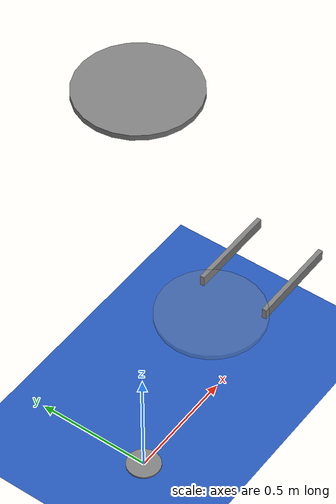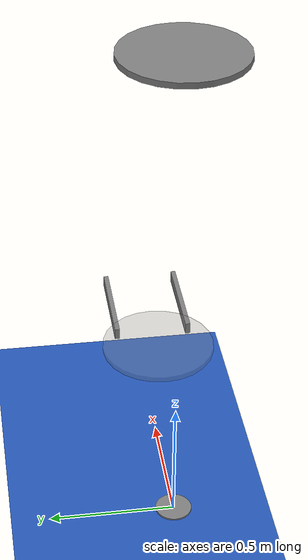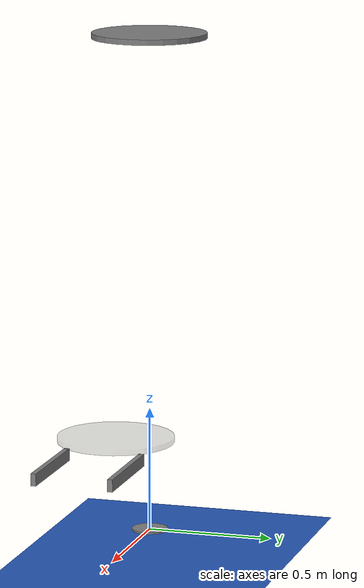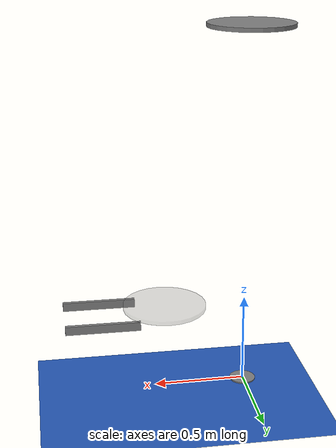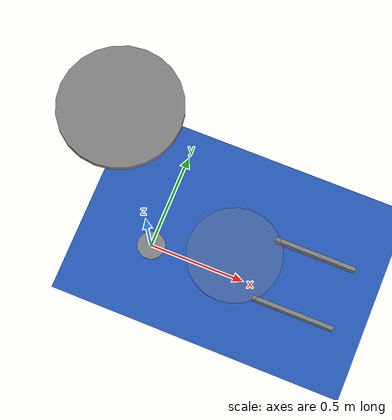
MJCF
<mujoco model="Panda">
  <include file="../common.xml"/>

  <size memory="1M"/>

  <!-- const char kPlannerNames[] =
    "Sampling\n"
    "Gradient\n"
    "iLQG\n"
    "iLQS\n"
    "Robust Sampling\n"
    "Cross Entropy\n"
    "Sample Gradient"; -->

  <custom>
    <numeric name="agent_planner" data="0" />
    <numeric name="agent_horizon" data="0.3" />
    <numeric name="agent_timestep" data="0.0075" />
    <numeric name="agent_policy_width" data="0.001" />
    <numeric name="sampling_trajectories" data="30"/>
    <numeric name="sampling_spline_points" data="5" />
    <numeric name="sampling_exploration" data="0.1" />
    <numeric name="gradient_spline_points" data="6" />
  </custom>

  <statistic extent="1.5" center="0.1 0.2 0.3"/>

  <visual>
    <quality shadowsize="8192"/>
    <global azimuth="180" elevation="-30"/>
    <scale framelength=".3" framewidth=".03"/>
  </visual>

  <default>
    <geom solref=".001 1"/>
  </default>

  <compiler texturedir="./textures"/>

  <worldbody>
    <site name="world"/>
    <light pos="0 -0.1 0.5" dir="0 0.2 -1" diffuse="0.7 0.7 0.7" specular="0.3 0.3 0.3"
        directional="true" castshadow="true"/>
    <geom name="floor" pos="0 0 0" size="0 0 0.05" type="plane" material="blue_grid"/>

    <body name="target" mocap="true" pos="0.45 0 0.485">
      <geom name="target"  type="cylinder" size="0.2286 0.011" contype="0" conaffinity="0" rgba=".5 .5 .5 .3"/>
    </body>

    <body name="end_effector_target" mocap="true" pos="0.45 0 0.469">
      <geom name="end_effector_target"  type="cylinder" size="0.0725 0.005" contype="0" conaffinity="0" rgba=".5 .5 .5 .3"/>
    </body>

    <body name="tray" pos="0.0 0.0 2.0">
      <inertial mass="1" pos="0 0 0" diaginertia="0.013105 0.013105 0.026129"/>
      <freejoint/>
      <geom name="tray"  type="cylinder" size="0.2286 0.011" priority="1" condim="3" friction="0.4 .01 .003"/>
    </body>

    <body name="left_support" pos="0.8 0.15 0.447" quat="1 0 0 0">
      <geom name="left_support"  type="box" size="0.2 0.01 0.024" priority="2" condim="3" friction="0.1 .01 .003"/>
    </body>

    <body name="right_support" pos="0.8 -0.15 0.447">
      <geom name="right_support"  type="box" size="0.2 0.01 0.024" priority="2" condim="3" friction="0.1 .01 .003"/>
    </body>
  </worldbody>

  <keyframe>
    <key name="home" qpos="0.7 0.00 0.482 1 0 0 0 0.55 0.0 0.45"/>
  </keyframe>

  <sensor>
    <user name="End Effector Target" dim="3" user="2 0.5 0 10 0.01"/>
    <user name="Tray Target" dim="3" user="2 1 0 10 0.01"/>
    <user name="Tray Orientation" dim="3" user="2 0.325 0 5 1"/>
    <framepos name="end_effector" objtype="site" objname="eeff"/>
    <framepos name="tray" objtype="geom" objname="tray"/>
    <framepos name="target" objtype="geom" objname="target"/>
    <framepos name="end_effector_target" objtype="geom" objname="end_effector_target"/>
    <framequat name="tray_quat" objtype="geom" objname="tray"/>
    <framequat name="center_support" objtype="geom" objname="left_support"/>
    <framepos name="trace0" objtype="site" objname="eeff"/>
    <framepos name="trace1" objtype="geom" objname="tray"/>
  </sensor>

  <include file="end_effector.xml"/>
</mujoco>

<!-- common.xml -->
<mujoco>

    <visual>
        <headlight ambient=".4 .4 .4" diffuse=".8 .8 .8" specular="0.1 0.1 0.1"/>
        <map znear=".01"/>
        <quality shadowsize="2048"/>
        <global elevation="-15"/>
    </visual>

    <asset>
        <texture name="blue_grid" type="2d" builtin="checker" rgb1=".02 .14 .44" rgb2=".27 .55 1" width="300" height="300" mark="edge" markrgb="1 1 1"/>
        <material name="blue_grid" texture="blue_grid" texrepeat="1 1" texuniform="true" reflectance=".2"/>

        <texture name="grey_grid" type="2d" builtin="checker" rgb1=".26 .26 .26" rgb2=".6 .6 .6" width="300" height="300" mark="edge" markrgb="1 1 1"/>
        <material name="grey_grid" texture="grey_grid" texrepeat="1 1" texuniform="true" reflectance=".2"/>
        <texture name="skybox" type="skybox" builtin="gradient" rgb1=".66 .79 1" rgb2=".9 .91 .93" width="800" height="800"/>

        <material name="self" rgba=".7 .5 .3 1"/>
        <material name="self_default" rgba=".7 .5 .3 1"/>
        <material name="self_highlight" rgba="0 .5 .3 1"/>
        <material name="effector" rgba=".7 .4 .2 1"/>
        <material name="effector_default" rgba=".7 .4 .2 1"/>
        <material name="effector_highlight" rgba="0 .5 .3 1"/>
        <material name="decoration" rgba=".2 .6 .3 1"/>
        <material name="eye" rgba="0 .2 1 1"/>
        <material name="target" rgba=".6 .3 .3 1"/>
        <material name="target_default" rgba=".6 .3 .3 1"/>
        <material name="target_highlight" rgba=".6 .3 .3 .4"/>
        <material name="site" rgba=".5 .5 .5 .3"/>
    </asset>

    <size memory="1M"/>

    <statistic extent="0.4" center="0.3 0.1 0"/>

    <visual>
        <quality shadowsize="8192"/>
        <global azimuth="180" elevation="-30"/>
    </visual>

    <default>
        <geom friction="1.0"/>
    </default>

    <compiler angle="radian" autolimits="true"/>

    <asset>
        <mesh name="apple" file="../../shared_assets/apple/apple.obj" />
        <mesh name="apple_contact0" file="../../shared_assets/apple/contact0.stl"  />
        <mesh name="apple_contact1" file="../../shared_assets/apple/contact1.stl"  />

        <mesh name="doorknob" file="../../shared_assets/doorknob/doorknob.obj" />

        <mesh name="flashlight" file="../../shared_assets/flashlight/flashlight.obj" />
        <mesh name="flashlight_contact0" file="../../shared_assets/flashlight/contact0.stl"  />
        <mesh name="flashlight_contact1" file="../../shared_assets/flashlight/contact1.stl"  />

        <mesh name="hammer" file="../../shared_assets/hammer/hammer.obj" />
        <mesh name="hammer_contact0" file="../../shared_assets/hammer/contact0.stl"  />
        <mesh name="hammer_contact1" file="../../shared_assets/hammer/contact1.stl"  />

        <mesh name="phone" file="../../shared_assets/phone/phone.obj" />
        <mesh name="phone_contact0" file="../../shared_assets/phone/contact0.stl"  />
        <mesh name="phone_contact1" file="../../shared_assets/phone/contact1.stl"  />
        <mesh name="phone_contact2" file="../../shared_assets/phone/contact2.stl"  />

        <mesh name="stapler" file="../../shared_assets/stapler/stapler.obj" />
        <mesh name="stapler_contact0" file="../../shared_assets/stapler/contact0.stl"  />
        <mesh name="stapler_contact1" file="../../shared_assets/stapler/contact1.stl"  />
        <mesh name="stapler_contact2" file="../../shared_assets/stapler/contact2.stl"  />
        <mesh name="stapler_contact3" file="../../shared_assets/stapler/contact3.stl"  />
        <mesh name="stapler_contact4" file="../../shared_assets/stapler/contact4.stl"  />

        <mesh name="waterbottle" file="../../shared_assets/waterbottle/waterbottle.obj" />
        <mesh name="waterbottle_contact0" file="../../shared_assets/waterbottle/contact0.stl"  />
        <mesh name="waterbottle_contact1" file="../../shared_assets/waterbottle/contact1.stl"  />
    </asset>

</mujoco>

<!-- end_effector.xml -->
<mujoco model="end_effector">
  <compiler angle="radian" meshdir="assets" autolimits="true"/>

  <option timestep="0.0005"/>

  <worldbody>
    <light name="top" pos="0 0 2" mode="trackcom"/>
    <body name="base_link">
      <inertial mass="0.37" pos="0 0 0" diaginertia="0.00048818 0.00048818 0.00097241"/>
      <geom type="cylinder" size="0.0725 0.005" priority="1" condim="3" friction="0.6 .01 .003"/>
        <joint name="end_effector_x" type="slide" range="0.4 0.6" axis="1 0 0" limited="true"/>
          <joint name="end_effector_y" type="slide" range="-0.1 0.1" axis="0 1 0" limited="true"/>
            <joint name="end_effector_z" type="slide" range="0.35 0.7" axis="0 0 1" limited="true"/>
            <site name="eeff" pos="0 0 0.0" group="3"/>
    </body>
  </worldbody>

  <actuator>
    <general site="eeff" refsite="world" gaintype="fixed" forcerange="-10 10" ctrlrange="-1 1" forcelimited="true" ctrllimited="true" gainprm="10" gear="1 0 0 0 0 0"/>
    <general site="eeff" refsite="world" gaintype="fixed" forcerange="-10 10" ctrlrange="-1 1" forcelimited="true" ctrllimited="true" gainprm="10" gear="0 1 0 0 0 0"/>
    <general site="eeff" refsite="world" gaintype="fixed" forcerange="0 30" ctrlrange="0 1" forcelimited="true" ctrllimited="true" gainprm="30" gear="0 0 1 0 0 0"/>
  </actuator>
</mujoco>
